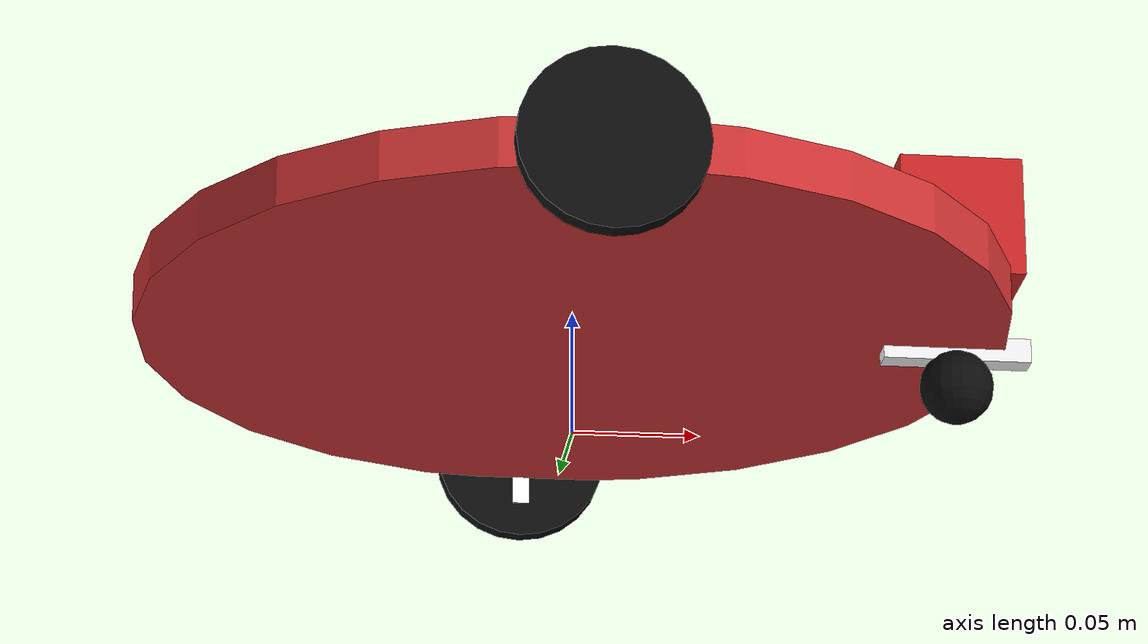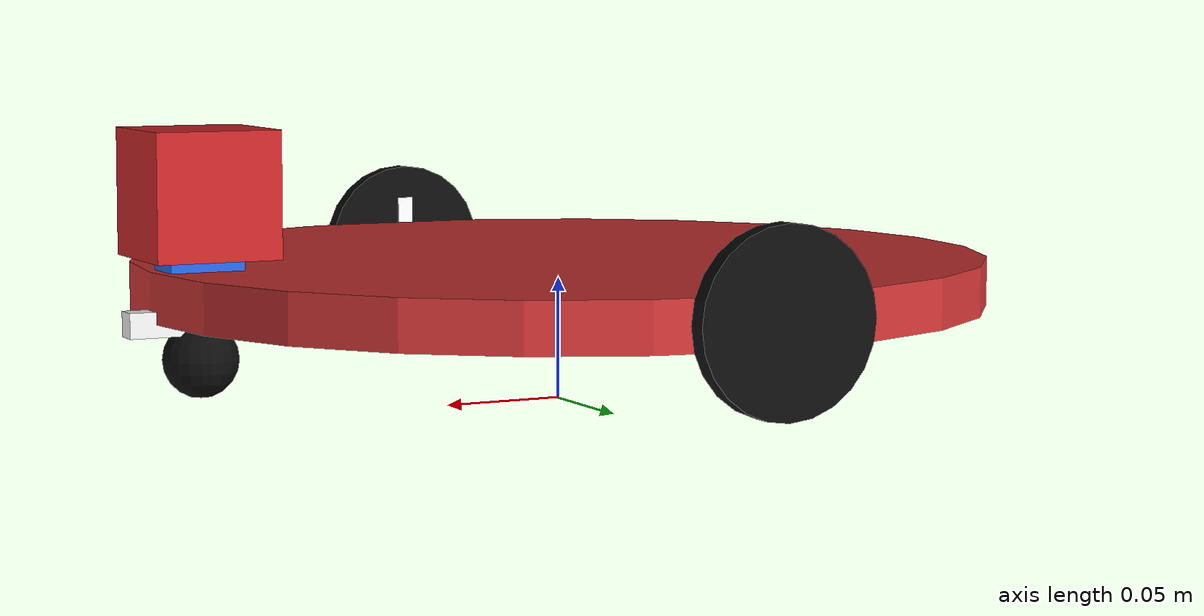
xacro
<?xml version="1.0"?>
<robot xmlns:xacro="http://www.ros.org/wiki/xacro" name="my_robot">

  <!-- ========================== Properties ========================== -->
  <xacro:property name="wheel_d" value="0.072" />
  <xacro:property name="wheel_r" value="${wheel_d/2.0}" />
  <xacro:property name="wheel_w" value="0.008" />
  <xacro:property name="base_radius" value="0.175" />
  <xacro:property name="base_thickness" value="0.02" />
  <xacro:property name="base_z_offset" value="0.05" />
  <xacro:property name="head_x" value="0.03" />
  <xacro:property name="head_y" value="0.02" />
  <xacro:property name="head_z" value="0.02" />
  <xacro:property name="passive_holder_len" value="0.06" />
  <xacro:property name="passive_wheel_r" value="0.015" />
  <xacro:property name="passive_wheel_w" value="0.01" />

  <!-- Mass properties -->
  <xacro:property name="mass_head" value="0.02" />
  <xacro:property name="mass_base" value="0.1" />
  <xacro:property name="mass_back_wheel" value="0.025" />
  <xacro:property name="mass_passive_holder" value="0.015" />
  <xacro:property name="mass_passive_wheel" value="0.01" />
  <xacro:property name="camera_size" value="0.05" />

  <material name="wheel_black">
    <color rgba="0.05 0.05 0.05 1.0" />
  </material>

  <!-- ========================== Links ========================== -->
  <link name="base_footprint" />

  <link name="base_link">
    <visual>
      <geometry>
        <cylinder radius="${base_radius}" length="${base_thickness}" />
      </geometry>
      <material name="base_red">
        <color rgba="0.8 0.2 0.2 1.0" />
      </material>
    </visual>
    <collision>
      <geometry>
        <cylinder radius="${base_radius}" length="${base_thickness}" />
      </geometry>
    </collision>
    <inertial>
      <mass value="${mass_base}" />
      <inertia ixx="0.001" iyy="0.001" izz="0.001" ixy="0" ixz="0" iyz="0" />
    </inertial>
  </link>

  <link name="head_link">
    <visual>
      <geometry>
        <box size="${head_x} ${head_y} ${head_z}" />
      </geometry>
      <material name="head_blue">
        <color rgba="0.15 0.4 0.9 1.0" />
      </material>
    </visual>
    <collision>
      <geometry>
        <box size="${head_x} ${head_y} ${head_z}" />
      </geometry>
    </collision>
    <inertial>
      <mass value="${mass_head}" />
      <inertia ixx="0.00001" iyy="0.00001" izz="0.00001" ixy="0" ixz="0" iyz="0" />
    </inertial>
  </link>

  <!-- Back wheels -->
  <link name="left_wheel">
    <visual>
      <geometry>
        <cylinder radius="${wheel_r}" length="${wheel_w}" />
      </geometry>
      <material name="wheel_black" />
    </visual>
    <collision>
      <geometry>
        <cylinder radius="${wheel_r}" length="${wheel_w}" />
      </geometry>
    </collision>
    <inertial>
      <mass value="${mass_back_wheel}" />
      <inertia ixx="0.00001" iyy="0.00001" izz="0.00001" ixy="0" ixz="0" iyz="0" />
    </inertial>

    <gazebo>
      <mu1>1.0</mu1>
      <mu2>1.0</mu2>
      <kp>100000</kp>
      <kd>1</kd>
      <turningSlip>0.1</turningSlip>
    </gazebo>
  </link>

  <link name="right_wheel">
    <visual>
      <geometry>
        <cylinder radius="${wheel_r}" length="${wheel_w}" />
      </geometry>
      <material name="wheel_black" />
    </visual>
    <collision>
      <geometry>
        <cylinder radius="${wheel_r}" length="${wheel_w}" />
      </geometry>
    </collision>
    <inertial>
      <mass value="${mass_back_wheel}" />
      <inertia ixx="0.00001" iyy="0.00001" izz="0.00001" ixy="0" ixz="0" iyz="0" />
    </inertial>

    <gazebo>
      <mu1>1.0</mu1>
      <mu2>1.0</mu2>
      <kp>100000</kp>
      <kd>1</kd>
      <turningSlip>0.1</turningSlip>
    </gazebo>
  </link>

  <!-- Rotation markers -->
  <link name="left_wheel_marker">
    <visual>
      <geometry>
        <box size="${wheel_r*0.2} ${wheel_w*0.1} ${wheel_r*1.2}" />
      </geometry>
      <material name="marker_white">
        <color rgba="1 1 1 1" />
      </material>
    </visual>
    <collision>
      <geometry>
        <box size="${wheel_r*0.2} ${wheel_w*0.1} ${wheel_r*1.2}" />
      </geometry>
    </collision>
  </link>

  <link name="right_wheel_marker">
    <visual>
      <geometry>
        <box size="${wheel_r*0.2} ${wheel_w*0.1} ${wheel_r*1.2}" />
      </geometry>
      <material name="marker_white">
        <color rgba="1 1 1 1" />
      </material>
    </visual>
    <collision>
      <geometry>
        <box size="${wheel_r*0.2} ${wheel_w*0.1} ${wheel_r*1.2}" />
      </geometry>
    </collision>
  </link>

  <link name="passive_wheel_holder">
    <visual>
      <geometry>
        <box size="${passive_holder_len} ${passive_wheel_w} ${passive_wheel_w}" />
      </geometry>
      <material name="white">
        <color rgba="0.95 0.95 0.95 1.0" />
      </material>
    </visual>
    <collision>
      <geometry>
        <box size="${passive_holder_len} ${passive_wheel_w} ${passive_wheel_w}" />
      </geometry>
    </collision>
    <inertial>
      <mass value="${mass_passive_holder}" />
      <inertia ixx="0.000005" iyy="0.000005" izz="0.000005" ixy="0" ixz="0" iyz="0" />
    </inertial>
  </link>

  <link name="passive_wheel">
    <visual>
      <geometry>
        <sphere radius="${passive_wheel_r}" />
      </geometry>
      <material name="wheel_black" />
    </visual>
    <collision>
      <geometry>
        <sphere radius="${passive_wheel_r}" />
      </geometry>
    </collision>
    <inertial>
      <mass value="${mass_passive_wheel}" />
      <inertia ixx="0.000002" iyy="0.000002" izz="0.000002" ixy="0" ixz="0" iyz="0" />
    </inertial>

    <gazebo>
      <mu1>0.0</mu1>
      <mu2>0.0</mu2>
      <kp>100000</kp>
      <kd>1</kd>
      <turningSlip>0.0</turningSlip>
    </gazebo>
  </link>

  <link name="camera_link">
    <visual>
      <origin xyz="0 0 0" rpy="0 0 0" />
      <geometry>
        <box size="${camera_size} ${camera_size} ${camera_size}" />
      </geometry>
      <material name="red" />
    </visual>
    <collision>
      <origin xyz="0 0 0" rpy="0 0 0" />
      <geometry>
        <box size="${camera_size} ${camera_size} ${camera_size}" />
      </geometry>
    </collision>
    <inertial>
      <mass value="0.001" />
      <inertia ixx="1e-6" iyy="1e-6" izz="1e-6" ixy="0" ixz="0" iyz="0" />
    </inertial>
  </link>

  <!-- ========================== Joints ========================== -->
  <joint name="head_to_camera" type="fixed">
    <parent link="head_link" />
    <child link="camera_link" />
    <origin xyz="0.0 0.0 0.02" rpy="0 0 0" />
  </joint>

  <joint name="footprint_to_base" type="fixed">
    <parent link="base_footprint" />
    <child link="base_link" />
    <origin xyz="0 0 ${base_z_offset}" rpy="0 0 0" />
  </joint>

  <joint name="base_to_head" type="fixed">
    <parent link="base_link" />
    <child link="head_link" />
    <origin xyz="${base_radius - 0.02} 0 ${base_thickness/2.0 + head_z/2.0}" rpy="0 0 0" />
  </joint>

  <joint name="base_to_left_wheel" type="continuous">
    <parent link="base_link" />
    <child link="left_wheel" />
    <origin xyz="${-wheel_w/2} ${base_radius + 0.001} 0" rpy="${-pi/2} ${pi/2} 0" />
    <axis xyz="0 0 1" />
  </joint>

  <joint name="base_to_right_wheel" type="continuous">
    <parent link="base_link" />
    <child link="right_wheel" />
    <origin xyz="${-wheel_w/2} ${-base_radius} 0" rpy="${-pi/2} ${pi/2} 0" />
    <axis xyz="0 0 1" />
  </joint>

  <joint name="left_wheel_marker_fixed" type="fixed">
    <parent link="left_wheel" />
    <child link="left_wheel_marker" />
    <origin xyz="0 0 ${-wheel_w / 2}" rpy="${pi/2} 0 ${pi/2}" />
  </joint>

  <joint name="right_wheel_marker_fixed" type="fixed">
    <parent link="right_wheel" />
    <child link="right_wheel_marker" />
    <origin xyz="0 0 ${wheel_w / 2}" rpy="${pi/2} 0 ${pi/2}" />
  </joint>

  <joint name="base_to_passive_holder" type="fixed">
    <parent link="base_link" />
    <child link="passive_wheel_holder" />
    <origin xyz="${base_radius - 0.02} 0 ${-base_thickness/2.0}" rpy="0 0 0" />
  </joint>

  <joint name="holder_to_passive_wheel" type="fixed">
    <parent link="passive_wheel_holder" />
    <child link="passive_wheel" />
    <origin xyz="0 0 ${-passive_wheel_r}" rpy="0 0 0" />
    <axis xyz="0 0 1" />
  </joint>

  <gazebo>
    <plugin name="my_robot_diff_drive" filename="libgazebo_ros_diff_drive.so">
      <ros>
        <namespace>/my_robot</namespace>
        <remapping>odom:=diff_cont/odom</remapping>
      </ros>

      <update_rate>50</update_rate>

      <left_joint>base_to_left_wheel</left_joint>
      <right_joint>base_to_right_wheel</right_joint>

      <wheel_separation>0.35</wheel_separation>
      <wheel_radius>0.036</wheel_radius>
      <wheel_diameter>0.072</wheel_diameter>

      <command_topic>/my_robot/cmd_vel</command_topic>

      <odometry_topic>odom</odometry_topic>
      <odometry_frame>odom</odometry_frame>

      <robot_base_frame>base_footprint</robot_base_frame>

      <publish_odom>true</publish_odom>
      <publish_odom_tf>true</publish_odom_tf>
      <publish_joint_state>true</publish_joint_state>
      <publish_tf>true</publish_tf>
      <publish_wheel_tf>true</publish_wheel_tf>
    </plugin>

    <plugin name="p3d_base_controller" filename="libgazebo_ros_p3d.so">
      <ros>
        <remapping>odom:=ground_truth</remapping>
      </ros>
      <update_rate>50.0</update_rate>
      <body_name>base_footprint</body_name>
      <gaussian_noise>0.0</gaussian_noise>
      <frame_name>odom</frame_name>
      <xyz_offset>0 0 0</xyz_offset>
      <rpy_offset>0 0 0</rpy_offset>
    </plugin>

  </gazebo>

  <gazebo reference="camera_link">
    <sensor type="camera" name="camera1">
      <update_rate>30.0</update_rate>
      <camera name="head_camera">
        <horizontal_fov>1.3962634</horizontal_fov>
        <image>
          <width>800</width>
          <height>800</height>
          <format>R8G8B8</format>
        </image>
        <clip>
          <near>0.02</near>
          <far>50</far>
        </clip>
        <noise>
          <type>gaussian</type>
          <mean>0.0</mean>
          <stddev>0.007</stddev>
        </noise>
      </camera>

      <plugin name="camera_controller" filename="libgazebo_ros_camera.so">
        <ros>
          <namespace>/my_robot</namespace>
        </ros>
        <alwaysOn>true</alwaysOn>
        <updateRate>0.0</updateRate>
        <cameraName>camera1</cameraName>
        <imageTopicName>/camera1/image_raw</imageTopicName>
        <cameraInfoTopicName>/camera1/camera_info</cameraInfoTopicName>
        <frameName>camera_link</frameName>
        <hackBaseline>0.07</hackBaseline>
      </plugin>
    </sensor>
  </gazebo>

</robot>
